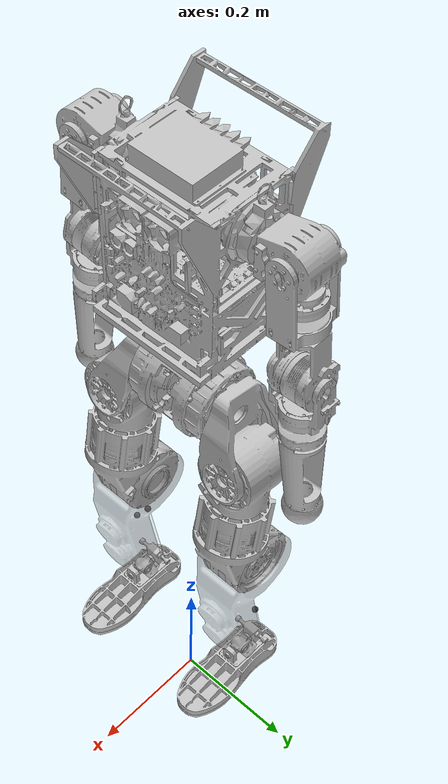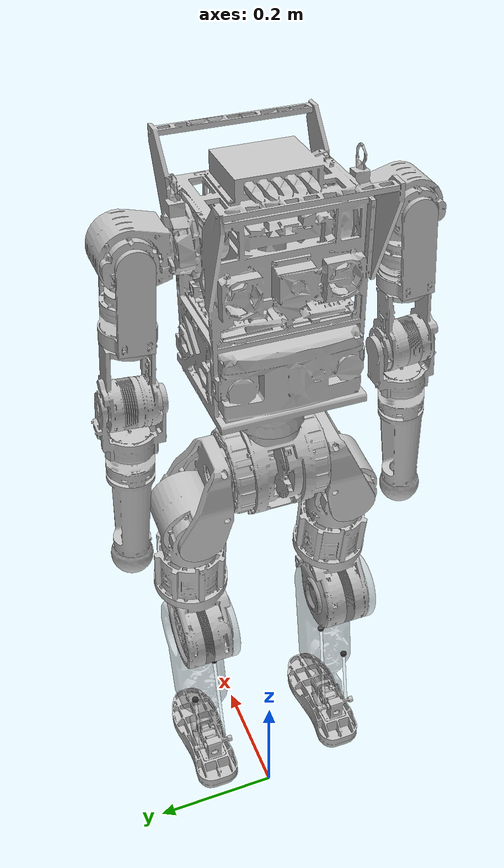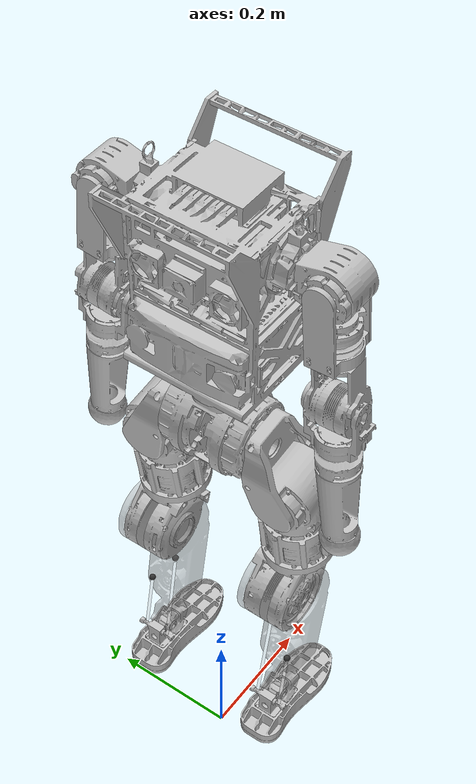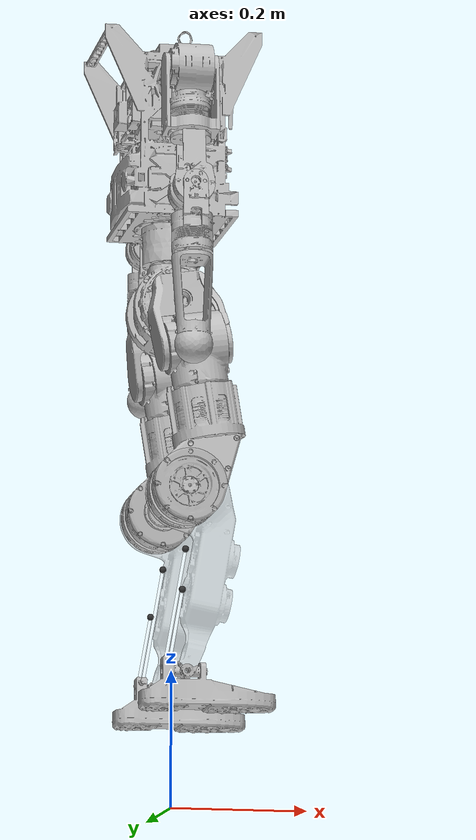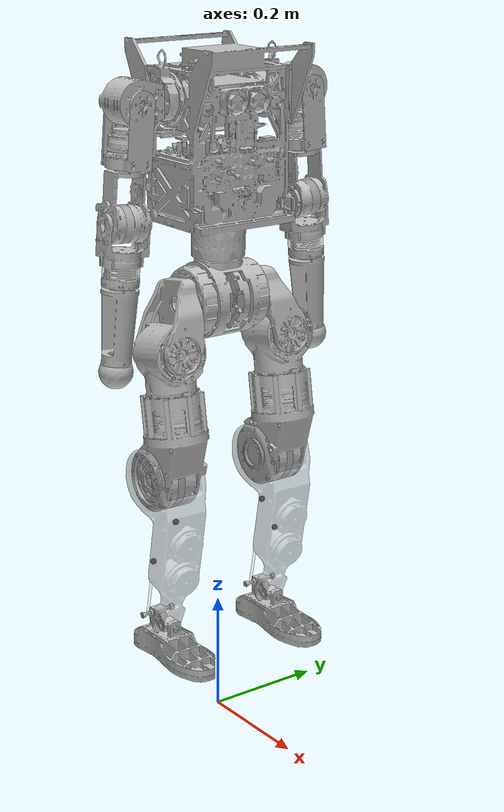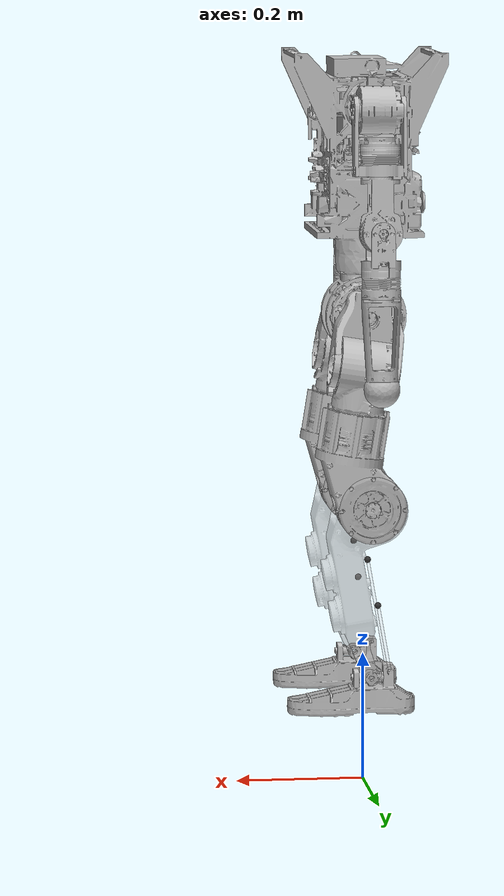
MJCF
<?xml version='1.1' encoding='utf-8'?>
<mujoco model="MiniV1-1">
  <compiler angle="radian" meshdir="meshes_reduce/" />

  <option timestep="0.0002" />

  <default>
    <default class="mini">
      <default class="visual">
        <geom type="mesh" contype="0" conaffinity="0" group="2" density="0" material="silver" />
      </default>
      <default class="collision">
        <geom group="3" rgba="0.2 0.6 0.2 0.5" type="capsule" contype="1" conaffinity="1" />
        <default class="foot_capsule">
          <geom type="capsule" size="0.01" />
        </default>
      </default>
      <site group="5" rgba="1 0 0 1" />
    </default>
  </default>

  <asset>
    <material name="silver" rgba="0.752941 0.752941 0.752941 1" />
    <material name="black" rgba="0.3 0.3 0.3 1" />
    <mesh name="pelvis_link" file="pelvis_link.STL" />
    <mesh name="left_hip_pitch_link" file="left_hip_pitch_link.STL" />
    <mesh name="left_hip_roll_link" file="left_hip_roll_link.STL" />
    <mesh name="left_hip_yaw_link" file="left_hip_yaw_link.STL" />
    <mesh name="left_knee_link" file="left_knee_link.STL" />
    <mesh name="left_ankle_pitch_link" file="left_ankle_pitch_link.STL" />
    <mesh name="left_ankle_roll_link" file="left_ankle_roll_link.STL" />
    <mesh name="right_hip_pitch_link" file="right_hip_pitch_link.STL" />
    <mesh name="right_hip_roll_link" file="right_hip_roll_link.STL" />
    <mesh name="right_hip_yaw_link" file="right_hip_yaw_link.STL" />
    <mesh name="right_knee_link" file="right_knee_link.STL" />
    <mesh name="right_ankle_pitch_link" file="right_ankle_pitch_link.STL" />
    <mesh name="right_ankle_roll_link" file="right_ankle_roll_link.STL" />
    <mesh name="torso_link" file="torso_link.STL" />
    <mesh name="left_shoulder_pitch_link" file="left_shoulder_pitch_link.STL" />
    <mesh name="left_shoulder_roll_link" file="left_shoulder_roll_link.STL" />
    <mesh name="left_shoulder_yaw_link" file="left_shoulder_yaw_link.STL" />
    <mesh name="left_elbow_link" file="left_elbow_link.STL" />
    <mesh name="left_wrist_yaw_link" file="left_wrist_yaw_link.STL" />
    <mesh name="right_shoulder_pitch_link" file="right_shoulder_pitch_link.STL" />
    <mesh name="right_shoulder_roll_link" file="right_shoulder_roll_link.STL" />
    <mesh name="right_shoulder_yaw_link" file="right_shoulder_yaw_link.STL" />
    <mesh name="right_elbow_link" file="right_elbow_link.STL" />
    <mesh name="right_wrist_yaw_link" file="right_wrist_yaw_link.STL" />
  </asset>

  <default>
    <default class="EC-A8116-P1-18H">
      <joint damping="0.05" armature="0.063828" frictionloss="0.9" solimplimit="0.95 0.99 0.001" solreflimit="0.002 1" limited="true" />
    </default>
    <default class="EC-A6416-P2-30.25H">
      <joint damping="0.05" armature="0.093956787" frictionloss="0.15" solimplimit="0.95 0.99 0.001" solreflimit="0.002 1" limited="true" />
    </default>
    <default class="EC-A6408-P2-30.25H">
      <joint damping="0.05" armature="0.057648938" frictionloss="0.5" solimplimit="0.95 0.99 0.001" solreflimit="0.002 1" limited="true" />
    </default>
    <default class="EC-A4310-P2-36H">
      <joint damping="0.05" armature="0.023328" frictionloss="0.08" solimplimit="0.95 0.99 0.001" solreflimit="0.002 1" limited="true" />
    </default>
    <default class="passive_joint">
      <joint damping="0.01" armature="0.0" frictionloss="0.0" solimplimit="0.95 0.99 0.001" solreflimit="0.002 1" limited="true" />
    </default>
  </default>

  <worldbody>
    <body name="pelvis_link" pos="0 0 0.8" childclass="mini" quat="1 0 0 0">
      <inertial pos="-2.035e-05 -1.735e-05 -0.06318792" quat="0.999997 0.001049373 -0.002216634 -4.63609e-05" mass="2.63847571" diaginertia="0.006633289 0.004980845 0.006152766" />
      <joint name="floating_base_joint" type="free" limited="false" actuatorfrclimited="false" />
      <geom class="visual" mesh="pelvis_link" />
      <geom name="pelvis_collision" pos="0 0 -0.065" class="collision" type="sphere" size="0.065" />
      <site name="imu" size="0.01" pos="0 0 -0.12153" />

      <body name="left_hip_pitch_link" pos="0 0.0625 -0.06475" quat="1 0 0 0">
        <inertial pos="0.00555412 0.02072691 -0.01707044" quat="0.1434531 0.960055 -0.1177593 -0.2094" mass="0.54453771" diaginertia="0.0008610686 0.001378651 0.0006912709" />
        <joint name="left_hip_pitch_joint" pos="0 0 0" axis="0 1 0" range="-2.674559 2.910495" class="EC-A8116-P1-18H" />
        <geom class="visual" mesh="left_hip_pitch_link" />

        <body name="left_hip_roll_link" pos="0.01176 0.0455 -0.074072" quat="0.9969032 0 -0.07863872 0">
          <inertial pos="0.00511189 -7.346e-05 -0.01291473" quat="0.9970261 0.003968313 -0.03440506 -0.06884336" mass="1.70434274" diaginertia="0.002928036 0.002886656 0.002041599" />
          <joint name="left_hip_roll_joint" pos="0 0 0" axis="-1 0 0" range="-2.268928 0.5235988" class="EC-A6416-P2-30.25H" />
          <geom class="visual" mesh="left_hip_roll_link" />
          <geom name="left_hip_collision" class="collision" size="0.045" fromto="0.00 0.0 0.005 0.00 0.0 -0.12" />

          <body name="left_hip_yaw_link" pos="0.0015 0 -0.076" quat="1 0 0 0">
            <inertial pos="-0.01998504 -0.00065443 -0.08182325" quat="0.7406541 -0.1363333 -0.1656454 0.6367153" mass="2.72679645" diaginertia="0.01122164 0.01061735 0.003574768" />
            <joint name="left_hip_yaw_joint" pos="0 0 0" axis="0 0 -1" range="-2.443461 2.443461" class="EC-A6408-P2-30.25H" />
            <geom class="visual" mesh="left_hip_yaw_link" />
            <geom name="left_thigh_collision" pos="0.022 0.0 -0.11" euler ="0 0.5 0" class="collision" type="box" size="0.005 0.03 0.03" />

            <body name="left_knee_link" pos="-0.045 0 -0.13245" quat="0.9969032 0 0.07863872 0">
              <inertial pos="0.02687549 0.00022296 -0.11400047" quat="0.9996946 0.0033013 -0.006284745 -0.02367135" mass="1.89004803" diaginertia="0.009995922 0.009838597 0.002025321" />
              <joint name="left_knee_joint" pos="0 0 0" axis="0 1 0" range="-0.1919862 2.70526" class="EC-A8116-P1-18H" />
              <geom class="visual" mesh="left_knee_link" rgba="0.7 0.7 0.7 0.5" />
              <geom name="left_knee_collision" euler="1.5707 0 0" class="collision" type="cylinder" size="0.048 0.045" />
              <geom name="left_knee_collision2" pos="0.058 0 -0.04" euler="0 -0.2 0" class="collision" type="box" size="0.005 0.038 0.015" />
              <geom name="left_shin_collision" class="collision" size="0.042" fromto="0.035 0.0 -0.095 0.018 0.0 -0.18" />
              <geom name="left_shin_collision2" class="collision" size="0.02" fromto="0.0065 0.0 -0.245 0.0045 0.0 -0.26" />

              <body name="left_ankle_motor_1_link" pos="0.00134346 0 -0.09162433" quat="0.1846027 0.9789411 0.01615064 -0.08564625">
                <inertial pos="0 0 0" quat="1 0 0 0" mass="0.05" diaginertia="1e-05 1e-05 1e-05" />
                <joint name="left_ankle_motor_1_joint" pos="0 0 0" axis="-1 0 0" range="-1.507177 1.036716" class="EC-A4310-P2-36H" />
                <geom name="left_anchor_point_1" contype="0" conaffinity="0" size="0.005" pos="0 0.02 0" rgba="0.2 0.2 0.2 1" />

                <body name="left_ankle_long_rod" pos="0 0.02 0" quat="0.6954604 0.1286568 0.1278079 -0.6953038">
                  <joint name="left-anchor_joint_1" pos="0.0 0.0 0.0" type="ball" damping="0.0" />
                  <geom type="cylinder" contype="0" conaffinity="0" size="0.0025 0.08525" pos="0 0 0.08525" rgba="1 1 1 0.3" />
                </body>
              </body>

              <body name="left_ankle_motor_2_link" pos="-0.01020654 0 -0.1566043" quat="0.9813314 0.1714425 0.08585537 -0.01499927">
                <inertial pos="0 0 0" quat="1 0 0 0" mass="0.05" diaginertia="1e-05 1e-05 1e-05" />
                <joint name="left_ankle_motor_2_joint" pos="0 0 0" axis="-1 0 0" range="-0.9116581 1.661477" class="EC-A4310-P2-36H" />
                <geom name="left_anchor_point_2" contype="0" conaffinity="0" size="0.005" pos="0 0.02 0" rgba="0.2 0.2 0.2 1" />

                <body name="left_ankle_short_rod" pos="0 0.02 0" quat="0.1180893 0.6973005 -0.6971764 0.1173541">
                  <joint name="left-anchor_joint_2" pos="0.0 0.0 0.0" type="ball" damping="0.0" />
                  <geom type="cylinder" contype="0" conaffinity="0" size="0.0025 0.052" pos="0 0 0.052" rgba="1 1 1 0.3" />
                </body>
              </body>

              <body name="left_ankle_pitch_link" pos="0 0 -0.265" quat="1 0 0 0">
                <inertial pos="-0.00032043 0.0 -3.673e-05" quat="0.5054121 0.4945287 0.4945287 0.5054121" mass="0.10087325" diaginertia="2.116e-05 2.14974e-05 5.872598e-06" />
                <joint name="left_ankle_pitch_joint" pos="0 0 0" axis="0 1 0" range="-0.8726646 0.5235988" class="passive_joint" />
                <geom class="visual" mesh="left_ankle_pitch_link" />

                <body name="left_ankle_roll_link" pos="0 0 0" quat="1 0 0 0">
                  <inertial pos="0.00753543 -1.02e-06 -0.02294713" quat="0.0001515352 -0.6221758 9.484592e-05 -0.7828776" mass="0.97095099" diaginertia="0.002194273 0.00223876 0.0005364067" />
                  <joint name="left_ankle_roll_joint" pos="0 0 0" axis="1 0 0" range="-0.2617994 0.2617994" class="passive_joint" />
                  <geom class="visual" mesh="left_ankle_roll_link" />
                  <geom name="left_foot1_collision" class="foot_capsule" fromto="0.035 -0.027 -0.045 0.09 -0.027 -0.045" />
                  <geom name="left_foot2_collision" class="foot_capsule" fromto="-0.056 -0.018 -0.045 0.11 -0.018 -0.045" />
                  <geom name="left_foot3_collision" class="foot_capsule" fromto="-0.06 -0.009 -0.045 0.12 -0.009 -0.045" />
                  <geom name="left_foot4_collision" class="foot_capsule" fromto="-0.06 0.0 -0.045 0.12 0.0 -0.045" />
                  <geom name="left_foot5_collision" class="foot_capsule" fromto="-0.06 0.009 -0.045 0.12 0.009 -0.045" />
                  <geom name="left_foot6_collision" class="foot_capsule" fromto="-0.056 0.018 -0.045 0.11 0.018 -0.045" />
                  <geom name="left_foot7_collision" class="foot_capsule" fromto="0.035 0.027 -0.045 0.09 0.027 -0.045" />
                  <geom name="left_foot8_collision" class="foot_capsule" fromto="-0.05 -0.024 -0.045 -0.005 -0.0215 -0.045" />
                  <geom name="left_foot9_collision" class="foot_capsule" fromto="-0.05 0.024 -0.045 -0.005 0.0215 -0.045" />
                </body>
              </body>
            </body>
          </body>
        </body>
      </body>

      <body name="right_hip_pitch_link" pos="0 -0.0625 -0.06475" quat="1 0 0 0">
        <inertial pos="0.00555321 -0.02072693 -0.01707039" quat="0.9599627 0.1434297 0.2097806 0.1178632" mass="0.54454024" diaginertia="0.0008611428 0.001378681 0.0006911858" />
        <joint name="right_hip_pitch_joint" pos="0 0 0" axis="0 -1 0" range="-2.910495 2.674559" class="EC-A8116-P1-18H" />
        <geom class="visual" mesh="right_hip_pitch_link" />

        <body name="right_hip_roll_link" pos="0.01176 -0.0455 -0.074072" quat="0.9969032 0 -0.07863872 0">
          <inertial pos="0.00506376 5.988e-05 -0.01287545" quat="0.998806 -0.00275105 -0.03599963 0.03290963" mass="1.7026082" diaginertia="0.002926713 0.002882837 0.002036909" />
          <joint name="right_hip_roll_joint" pos="0 0 0" axis="-1 0 0" range="-0.5235988 2.268928" class="EC-A6416-P2-30.25H" />
          <geom class="visual" mesh="right_hip_roll_link" />
          <geom name="right_hip_collision" class="collision" size="0.045" fromto="0.00 0.0 0.005 0.00 0.0 -0.12" />

          <body name="right_hip_yaw_link" pos="0.0015 0 -0.076" quat="1 0 0 0">
            <inertial pos="-0.01996397 0.00082389 -0.08181562" quat="0.648357 -0.1634072 -0.1387214 0.7305393" mass="2.72679642" diaginertia="0.0112118 0.0105895 0.003601123" />
            <joint name="right_hip_yaw_joint" pos="0 0 0" axis="0 0 -1" range="-2.443461 2.443461" class="EC-A6408-P2-30.25H" />
            <geom class="visual" mesh="right_hip_yaw_link" />
            <geom name="right_thigh_collision" pos="0.022 0.0 -0.11" euler ="0 0.5 0" class="collision" type="box" size="0.005 0.03 0.03" />

            <body name="right_knee_link" pos="-0.045 0 -0.13245" quat="0.9969032 0 0.07863872 0">
              <inertial pos="0.0268749 -0.00022302 -0.11400033" quat="0.9996785 -0.003246467 -0.006290509 0.02434645" mass="1.89004634" diaginertia="0.009995613 0.009839117 0.00202455" />
              <joint name="right_knee_joint" pos="0 0 0" axis="0 -1 0" range="-2.70526 0.1919862" class="EC-A8116-P1-18H" />
              <geom class="visual" mesh="right_knee_link" rgba="0.7 0.7 0.7 0.5" />
              <geom name="right_knee_collision" euler="1.5707 0 0" class="collision" type="cylinder" size="0.048 0.045" />
              <geom name="right_knee_collision2" pos="0.058 0 -0.04" euler="0 -0.2 0" class="collision" type="box" size="0.005 0.038 0.015" />
              <geom name="right_shin_collision" class="collision" size="0.042" fromto="0.035 0.0 -0.095 0.018 0.0 -0.18" />
              <geom name="right_shin_collision2" class="collision" size="0.02" fromto="0.0065 0.0 -0.245 0.0045 0.0 -0.26" />

              <body name="right_ankle_motor_1_link" pos="0.00134346 0 -0.09162433" quat="0.9789411 0.1846027 0.08564625 -0.01615064">
                <inertial pos="0 0 0" quat="1 0 0 0" mass="0.05" diaginertia="1e-05 1e-05 1e-05" />
                <joint name="right_ankle_motor_1_joint" pos="0 0 0" axis="-1 0 0" range="-1.036716 1.507177" class="EC-A4310-P2-36H" />
                <geom name="right_anchor_point_1" contype="0" conaffinity="0" size="0.005" pos="0 0.02 0" rgba="0.2 0.2 0.2 1" />

                <body name="right_ankle_long_rod" pos="0 0.02 0" quat="0.1286568 0.6954604 -0.6953038 0.1278079">
                  <joint name="right-anchor_joint_1" pos="0.0 0.0 0.0" type="ball" damping="0.0" />
                  <geom type="cylinder" contype="0" conaffinity="0" size="0.0025 0.08525" pos="0 0 0.08525" rgba="1 1 1 0.3" />
                </body>
              </body>

              <body name="right_ankle_motor_2_link" pos="-0.01020654 0 -0.1566043" quat="0.1714425 0.9813314 0.01499927 -0.08585537">
                <inertial pos="0 0 0" quat="1 0 0 0" mass="0.05" diaginertia="1e-05 1e-05 1e-05" />
                <joint name="right_ankle_motor_2_joint" pos="0 0 0" axis="-1 0 0" range="-1.661477 0.9116581" class="EC-A4310-P2-36H" />
                <geom name="right_anchor_point_2" contype="0" conaffinity="0" size="0.005" pos="0 0.02 0" rgba="0.2 0.2 0.2 1" />

                <body name="right_ankle_short_rod" pos="0 0.02 0" quat="0.6973005 0.1180893 0.1173541 -0.6971764">
                  <joint name="right-anchor_joint_2" pos="0.0 0.0 0.0" type="ball" damping="0.0" />
                  <geom type="cylinder" contype="0" conaffinity="0" size="0.0025 0.052" pos="0 0 0.052" rgba="1 1 1 0.3" />
                </body>
              </body>

              <body name="right_ankle_pitch_link" pos="0 0 -0.265" quat="1 0 0 0">
                <inertial pos="-0.00032043 0.0 -3.673e-05" quat="0.5054121 0.4945287 0.4945287 0.5054121" mass="0.10087325" diaginertia="2.116e-05 2.14974e-05 5.872598e-06" />
                <joint name="right_ankle_pitch_joint" pos="0 0 0" axis="0 1 0" range="-0.8726646 0.5235988" class="passive_joint" />
                <geom class="visual" mesh="right_ankle_pitch_link" />

                <body name="right_ankle_roll_link" pos="0 0 0" quat="1 0 0 0">
                  <inertial pos="0.00753543 -1.02e-06 -0.02294713" quat="0.0001515352 -0.6221758 9.484592e-05 -0.7828776" mass="0.97095099" diaginertia="0.002194273 0.00223876 0.0005364067" />
                  <joint name="right_ankle_roll_joint" pos="0 0 0" axis="1 0 0" range="-0.2617994 0.2617994" class="passive_joint" />
                  <geom class="visual" mesh="right_ankle_roll_link" />
                  <geom name="right_foot1_collision" class="foot_capsule" fromto="0.035 -0.027 -0.045 0.09 -0.027 -0.045" />
                  <geom name="right_foot2_collision" class="foot_capsule" fromto="-0.056 -0.018 -0.045 0.11 -0.018 -0.045" />
                  <geom name="right_foot3_collision" class="foot_capsule" fromto="-0.06 -0.009 -0.045 0.12 -0.009 -0.045" />
                  <geom name="right_foot4_collision" class="foot_capsule" fromto="-0.06 0.0 -0.045 0.12 0.0 -0.045" />
                  <geom name="right_foot5_collision" class="foot_capsule" fromto="-0.06 0.009 -0.045 0.12 0.009 -0.045" />
                  <geom name="right_foot6_collision" class="foot_capsule" fromto="-0.056 0.018 -0.045 0.11 0.018 -0.045" />
                  <geom name="right_foot7_collision" class="foot_capsule" fromto="0.035 0.027 -0.045 0.09 0.027 -0.045" />
                  <geom name="right_foot8_collision" class="foot_capsule" fromto="-0.05 -0.024 -0.045 -0.005 -0.0215 -0.045" />
                  <geom name="right_foot9_collision" class="foot_capsule" fromto="-0.05 0.024 -0.045 -0.005 0.0215 -0.045" />
                </body>
              </body>
            </body>
          </body>
        </body>
      </body>

      <body name="torso_link" pos="0 0 0" quat="1 0 0 0">
        <inertial pos="-0.00500734 -3.292e-05 0.17142906" quat="0.9997297 -0.0004759538 -0.0231684 -0.001872702" mass="7.35038542" diaginertia="0.07327112 0.06085684 0.03195587" />
        <joint name="waist_joint" pos="0 0 0" axis="0 0 1" range="-2.792524 2.792524" class="EC-A6408-P2-30.25H" />
        <geom class="visual" mesh="torso_link" />
        <geom name="torso_collision" class="collision" type="box" size="0.08 0.1 0.125" pos="0 0 0.185" />
        <geom name="torso_connect_collision" class="collision" type="cylinder" size="0.045 0.025" pos="0 0 0.03" />

        <body name="left_shoulder_pitch_link" pos="0 0.1145 0.262" quat="1 0 0 0">
          <inertial pos="0.00314586 0.04206211 -0.00024138" quat="0.7211335 0.6616006 -0.2047462 0.01817094" mass="0.64542046" diaginertia="0.0003139259 0.0003248269 0.0002372973" />
          <joint name="left_shoulder_pitch_joint" pos="0 0 0" axis="0 1 0" range="-3.141593 2.443461" class="EC-A4310-P2-36H" />
          <geom class="visual" mesh="left_shoulder_pitch_link" />

          <body name="left_shoulder_roll_link" pos="0 0.0475 0" quat="0.999229 0.03925991 0 0">
            <inertial pos="-0.00414937 -3.05e-06 -0.07006253" quat="0.9989979 -6.887889e-05 -0.04475592 0.0002000639" mass="0.62292962" diaginertia="0.000407649 0.00058823 0.0003077209" />
            <joint name="left_shoulder_roll_joint" pos="0 0 0" axis="1 0 0" range="-0.2094395 3.351032" class="EC-A4310-P2-36H" />
            <geom class="visual" mesh="left_shoulder_roll_link" />
            <geom name="left_shoulder_roll_collision" class="collision" type="cylinder" pos="-0.006 0 0" euler="0 1.57 0" size="0.0355 0.04" />

            <body name="left_shoulder_yaw_link" pos="-0.00445 0 -0.1005" quat="1 0 0 0">
              <inertial pos="-0.00012378 0.00378958 -0.07324716" quat="0.7299428 -0.02070021 0.01599061 0.6830075" mass="0.59877676" diaginertia="0.0005166877 0.000579196 0.0001842264" />
              <joint name="left_shoulder_yaw_joint" pos="0 0 0" axis="0 0 -1" range="-2.443461 2.443461" class="EC-A4310-P2-36H" />
              <geom class="visual" mesh="left_shoulder_yaw_link" />
              <geom name="left_shoulder_yaw_collision" class="collision" size="0.031" fromto="0.00 0.0 0.01 0.00 0.0 0.035" />

              <body name="left_elbow_link" pos="0 0 -0.08575" quat="1 0 0 0">
                <inertial pos="-8.542e-05 -0.00010653 -0.06634342" quat="0.7069462 0.01515581 -0.02019047 0.7068166" mass="0.54431198" diaginertia="0.0003206852 0.0004059513 0.0001824234" />
                <joint name="left_elbow_joint" pos="0 0 0" axis="0 1 0" range="-2.268928 1.570796" class="EC-A4310-P2-36H" />
                <geom class="visual" mesh="left_elbow_link" />
                <geom name="left_elbow_collision" class="collision" type="cylinder" pos="0 -0.002 0" euler="1.57 0 0" size="0.03 0.04"/>

                <body name="left_wrist_yaw_link" pos="0 0 -0.09975" quat="1 0 0 0">
                  <inertial pos="0.00019465 -1.775e-05 -0.07703047" quat="0.9999951 -0.0002454865 -0.003115703 0.0002942441" mass="0.58918937" diaginertia="0.001690944 0.00180045 0.0002883752" />
                  <joint name="left_wrist_yaw_joint" pos="0 0 0" axis="0 0 -1" range="-2.443461 2.443461" class="EC-A4310-P2-36H" />
                  <geom class="visual" mesh="left_wrist_yaw_link" />
                  <geom name="left_wrist_yaw_collision" class="collision" size="0.025" fromto="0.0 0.0 -0.138 0.0 0.0 0.04" />
                </body>
              </body>
            </body>
          </body>
        </body>

        <body name="right_shoulder_pitch_link" pos="0 -0.1145 0.262" quat="1 0 0 0">
          <inertial pos="0.00313918 -0.04207025 -0.00024128" quat="0.6607713 0.72094 -0.02063244 0.2078488" mass="0.64561369" diaginertia="0.0003141218 0.0003251634 0.0002373848" />
          <joint name="right_shoulder_pitch_joint" pos="0 0 0" axis="0 -1 0" range="-2.443461 3.141593" class="EC-A4310-P2-36H" />
          <geom class="visual" mesh="right_shoulder_pitch_link" />

          <body name="right_shoulder_roll_link" pos="0 -0.0475 0" quat="0.999229 -0.03925991 0 0">
            <inertial pos="-0.00415019 3.05e-06 -0.07006244" quat="0.9989683 6.88439e-05 -0.04541258 -0.0002002549" mass="0.62293181" diaginertia="0.0004076736 0.00058816 0.0003076264" />
            <joint name="right_shoulder_roll_joint" pos="0 0 0" axis="1 0 0" range="-3.351032 0.2094395" class="EC-A4310-P2-36H" />
            <geom class="visual" mesh="right_shoulder_roll_link" />
            <geom name="right_shoulder_roll_collision" class="collision" type="cylinder" pos="-0.006 0 0" euler="0 1.57 0" size="0.0355 0.04" />

            <body name="right_shoulder_yaw_link" pos="-0.00445 0 -0.1005" quat="1 0 0 0">
              <inertial pos="-0.00012484 -0.00379444 -0.0733066" quat="0.6827903 0.01630446 -0.02144891 0.7301175" mass="0.59887695" diaginertia="0.0005176696 0.000580173 0.0001842174" />
              <joint name="right_shoulder_yaw_joint" pos="0 0 0" axis="0 0 -1" range="-2.443461 2.443461" class="EC-A4310-P2-36H" />
              <geom class="visual" mesh="right_shoulder_yaw_link" />
              <geom name="right_shoulder_yaw_collision" class="collision" size="0.031" fromto="0.00 0.0 0.01 0.00 0.0 0.035" />

              <body name="right_elbow_link" pos="0 0 -0.08575" quat="1 0 0 0">
                <inertial pos="-7.701e-05 0.00010935 -0.06634495" quat="0.7075314 -0.02031896 0.01505608 0.7062293" mass="0.54437324" diaginertia="0.0003207758 0.0004060826 0.0001824716" />
                <joint name="right_elbow_joint" pos="0 0 0" axis="0 -1 0" range="-1.570796 2.268928" class="EC-A4310-P2-36H" />
                <geom class="visual" mesh="right_elbow_link" />
                <geom name="right_elbow_collision" class="collision" type="cylinder" pos="0 0.002 0" euler="1.57 0 0" size="0.03 0.04" />

                <body name="right_wrist_yaw_link" pos="0 0 -0.09975" quat="1 0 0 0">
                  <inertial pos="0.00020246 -1.808e-05 -0.07705982" quat="0.9999947 -0.000250769 -0.003233731 -0.000206746" mass="0.58918937" diaginertia="0.001690819 0.00180028 0.000288351" />
                  <joint name="right_wrist_yaw_joint" pos="0 0 0" axis="0 0 -1" range="-2.443461 2.443461" class="EC-A4310-P2-36H" />
                  <geom class="visual" mesh="right_wrist_yaw_link" />
                  <geom name="right_wrist_yaw_collision" class="collision" size="0.025" fromto="0.0 0.0 -0.138 0.0 0.0 0.04" />
                </body>
              </body>
            </body>
          </body>
        </body>
      </body>
    </body>
  </worldbody>

  <equality>
    <connect body2="left_ankle_short_rod" body1="left_ankle_roll_link" anchor="-0.02718923 0.02 0.01267855" solref="0.0001 1" />
    <connect body2="left_ankle_long_rod" body1="left_ankle_roll_link" anchor="-0.02718923 -0.02 0.01267855" solref="0.0001 1" />
    <connect body2="right_ankle_short_rod" body1="right_ankle_roll_link" anchor="-0.02718923 -0.02 0.01267855" solref="0.0001 1" />
    <connect body2="right_ankle_long_rod" body1="right_ankle_roll_link" anchor="-0.02718923 0.02 0.01267855" solref="0.0001 1" />
  </equality>

  <actuator>
    <general name="left_hip_pitch" joint="left_hip_pitch_joint" ctrlrange="-130 130" />
    <general name="left_hip_roll" joint="left_hip_roll_joint" ctrlrange="-132 132" />
    <general name="left_hip_yaw" joint="left_hip_yaw_joint" ctrlrange="-70 70" />
    <general name="left_knee" joint="left_knee_joint" ctrlrange="-130 130" />
    <general name="left_ankle_motor_1_joint" joint="left_ankle_motor_1_joint" ctrlrange="-36 36" />
    <general name="left_ankle_motor_2_joint" joint="left_ankle_motor_2_joint" ctrlrange="-36 36" />
    <general name="right_hip_pitch" joint="right_hip_pitch_joint" ctrlrange="-130 130" />
    <general name="right_hip_roll" joint="right_hip_roll_joint" ctrlrange="-132 132" />
    <general name="right_hip_yaw" joint="right_hip_yaw_joint" ctrlrange="-70 70" />
    <general name="right_knee" joint="right_knee_joint" ctrlrange="-130 130" />
    <general name="right_ankle_motor_1_joint" joint="right_ankle_motor_1_joint" ctrlrange="-36 36" />
    <general name="right_ankle_motor_2_joint" joint="right_ankle_motor_2_joint" ctrlrange="-36 36" />
    <general name="waist" joint="waist_joint" ctrlrange="-70 70" />
    <general name="left_shoulder_pitch" joint="left_shoulder_pitch_joint" ctrlrange="-36 36" />
    <general name="left_shoulder_roll" joint="left_shoulder_roll_joint" ctrlrange="-36 36" />
    <general name="left_shoulder_yaw" joint="left_shoulder_yaw_joint" ctrlrange="-36 36" />
    <general name="left_elbow" joint="left_elbow_joint" ctrlrange="-36 36" />
    <general name="left_wrist_yaw" joint="left_wrist_yaw_joint" ctrlrange="-36 36" />
    <general name="right_shoulder_pitch" joint="right_shoulder_pitch_joint" ctrlrange="-36 36" />
    <general name="right_shoulder_roll" joint="right_shoulder_roll_joint" ctrlrange="-36 36" />
    <general name="right_shoulder_yaw" joint="right_shoulder_yaw_joint" ctrlrange="-36 36" />
    <general name="right_elbow" joint="right_elbow_joint" ctrlrange="-36 36" />
    <general name="right_wrist_yaw" joint="right_wrist_yaw_joint" ctrlrange="-36 36" />
  </actuator>

  <sensor>
    <jointpos name="left_hip_pitch_pos" joint="left_hip_pitch_joint" />
    <jointpos name="left_hip_roll_pos" joint="left_hip_roll_joint" />
    <jointpos name="left_hip_yaw_pos" joint="left_hip_yaw_joint" />
    <jointpos name="left_knee_pos" joint="left_knee_joint" />
    <jointpos name="left_ankle_motor_1_pos" joint="left_ankle_motor_1_joint" />
    <jointpos name="left_ankle_motor_2_pos" joint="left_ankle_motor_2_joint" />
    <jointpos name="right_hip_pitch_pos" joint="right_hip_pitch_joint" />
    <jointpos name="right_hip_roll_pos" joint="right_hip_roll_joint" />
    <jointpos name="right_hip_yaw_pos" joint="right_hip_yaw_joint" />
    <jointpos name="right_knee_pos" joint="right_knee_joint" />
    <jointpos name="right_ankle_motor_1_pos" joint="right_ankle_motor_1_joint" />
    <jointpos name="right_ankle_motor_2_pos" joint="right_ankle_motor_2_joint" />
    <jointpos name="waist_pos" joint="waist_joint" />
    <jointpos name="left_shoulder_pitch_pos" joint="left_shoulder_pitch_joint" />
    <jointpos name="left_shoulder_roll_pos" joint="left_shoulder_roll_joint" />
    <jointpos name="left_shoulder_yaw_pos" joint="left_shoulder_yaw_joint" />
    <jointpos name="left_elbow_pos" joint="left_elbow_joint" />
    <jointpos name="left_wrist_yaw_pos" joint="left_wrist_yaw_joint" />
    <jointpos name="right_shoulder_pitch_pos" joint="right_shoulder_pitch_joint" />
    <jointpos name="right_shoulder_roll_pos" joint="right_shoulder_roll_joint" />
    <jointpos name="right_shoulder_yaw_pos" joint="right_shoulder_yaw_joint" />
    <jointpos name="right_elbow_pos" joint="right_elbow_joint" />
    <jointpos name="right_wrist_yaw_pos" joint="right_wrist_yaw_joint" />
    <jointvel name="left_hip_pitch_vel" joint="left_hip_pitch_joint" />
    <jointvel name="left_hip_roll_vel" joint="left_hip_roll_joint" />
    <jointvel name="left_hip_yaw_vel" joint="left_hip_yaw_joint" />
    <jointvel name="left_knee_vel" joint="left_knee_joint" />
    <jointvel name="left_ankle_motor_1_vel" joint="left_ankle_motor_1_joint" />
    <jointvel name="left_ankle_motor_2_vel" joint="left_ankle_motor_2_joint" />
    <jointvel name="right_hip_pitch_vel" joint="right_hip_pitch_joint" />
    <jointvel name="right_hip_roll_vel" joint="right_hip_roll_joint" />
    <jointvel name="right_hip_yaw_vel" joint="right_hip_yaw_joint" />
    <jointvel name="right_knee_vel" joint="right_knee_joint" />
    <jointvel name="right_ankle_motor_1_vel" joint="right_ankle_motor_1_joint" />
    <jointvel name="right_ankle_motor_2_vel" joint="right_ankle_motor_2_joint" />
    <jointvel name="waist_vel" joint="waist_joint" />
    <jointvel name="left_shoulder_pitch_vel" joint="left_shoulder_pitch_joint" />
    <jointvel name="left_shoulder_roll_vel" joint="left_shoulder_roll_joint" />
    <jointvel name="left_shoulder_yaw_vel" joint="left_shoulder_yaw_joint" />
    <jointvel name="left_elbow_vel" joint="left_elbow_joint" />
    <jointvel name="left_wrist_yaw_vel" joint="left_wrist_yaw_joint" />
    <jointvel name="right_shoulder_pitch_vel" joint="right_shoulder_pitch_joint" />
    <jointvel name="right_shoulder_roll_vel" joint="right_shoulder_roll_joint" />
    <jointvel name="right_shoulder_yaw_vel" joint="right_shoulder_yaw_joint" />
    <jointvel name="right_elbow_vel" joint="right_elbow_joint" />
    <jointvel name="right_wrist_yaw_vel" joint="right_wrist_yaw_joint" />
    <jointactuatorfrc name="left_hip_pitch_torque" joint="left_hip_pitch_joint" />
    <jointactuatorfrc name="left_hip_roll_torque" joint="left_hip_roll_joint" />
    <jointactuatorfrc name="left_hip_yaw_torque" joint="left_hip_yaw_joint" />
    <jointactuatorfrc name="left_knee_torque" joint="left_knee_joint" />
    <jointactuatorfrc name="left_ankle_motor_1_torque" joint="left_ankle_motor_1_joint" />
    <jointactuatorfrc name="left_ankle_motor_2_torque" joint="left_ankle_motor_2_joint" />
    <jointactuatorfrc name="right_hip_pitch_torque" joint="right_hip_pitch_joint" />
    <jointactuatorfrc name="right_hip_roll_torque" joint="right_hip_roll_joint" />
    <jointactuatorfrc name="right_hip_yaw_torque" joint="right_hip_yaw_joint" />
    <jointactuatorfrc name="right_knee_torque" joint="right_knee_joint" />
    <jointactuatorfrc name="right_ankle_motor_1_torque" joint="right_ankle_motor_1_joint" />
    <jointactuatorfrc name="right_ankle_motor_2_torque" joint="right_ankle_motor_2_joint" />
    <jointactuatorfrc name="waist_torque" joint="waist_joint" />
    <jointactuatorfrc name="left_shoulder_pitch_torque" joint="left_shoulder_pitch_joint" />
    <jointactuatorfrc name="left_shoulder_roll_torque" joint="left_shoulder_roll_joint" />
    <jointactuatorfrc name="left_shoulder_yaw_torque" joint="left_shoulder_yaw_joint" />
    <jointactuatorfrc name="left_elbow_torque" joint="left_elbow_joint" />
    <jointactuatorfrc name="left_wrist_yaw_torque" joint="left_wrist_yaw_joint" />
    <jointactuatorfrc name="right_shoulder_pitch_torque" joint="right_shoulder_pitch_joint" />
    <jointactuatorfrc name="right_shoulder_roll_torque" joint="right_shoulder_roll_joint" />
    <jointactuatorfrc name="right_shoulder_yaw_torque" joint="right_shoulder_yaw_joint" />
    <jointactuatorfrc name="right_elbow_torque" joint="right_elbow_joint" />
    <jointactuatorfrc name="right_wrist_yaw_torque" joint="right_wrist_yaw_joint" />
    <framequat name="imu_quat" objtype="site" objname="imu" />
    <gyro name="imu_gyro" site="imu" />
    <accelerometer name="imu_acc" site="imu" />
    <framepos name="frame_pos" objtype="site" objname="imu" />
    <framelinvel name="frame_vel" objtype="site" objname="imu" />
  </sensor>
  <!-- for unit test -->
</mujoco>
